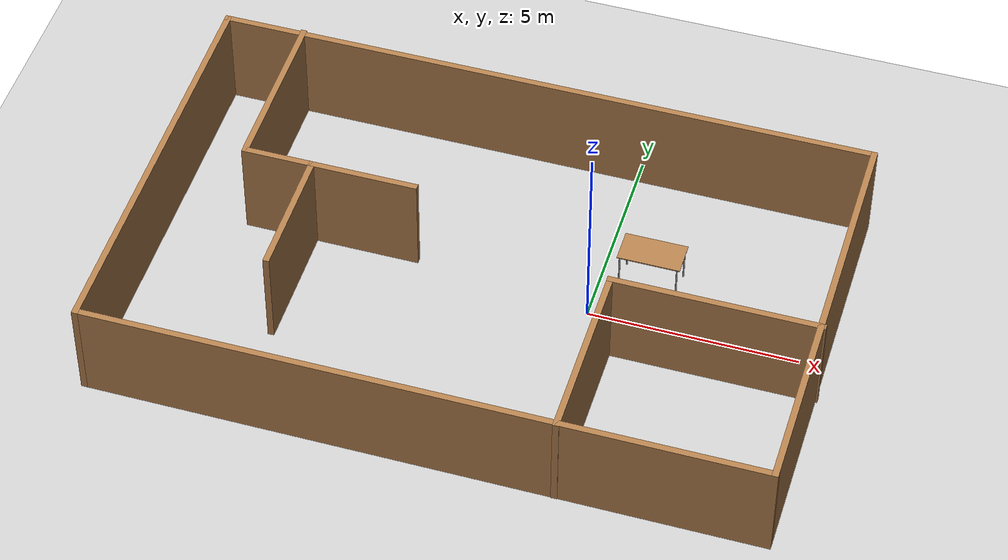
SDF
<sdf version="1.7">
 <world name="default">
  <light name="sun" type="directional">
   <pose>0 0 10 0 -0 0</pose>
   <diffuse>0.8 0.8 0.8 1</diffuse>
   <specular>0.2 0.2 0.2 1</specular>
   <attenuation>
    <range>1000</range>
    <constant>0.9</constant>
    <linear>0.01</linear>
    <quadratic>0.001</quadratic>
   </attenuation>
   <direction>-0.5 0.1 -0.9</direction>
   <spot><inner_angle>0</inner_angle><outer_angle>0</outer_angle><falloff>0</falloff></spot>
  </light>
  <model name="ground_plane">
   <static>1</static>
   <link name="link">
    <collision name="collision">
     <geometry><plane><normal>0 0 1</normal><size>100 100</size></plane></geometry>
     <surface>
      <contact><collide_bitmask>65535</collide_bitmask></contact>
      <friction><ode><mu>1.0</mu><mu2>1.0</mu2></ode></friction>
     </surface>
    </collision>
    <visual name="visual">
     <cast_shadows>0</cast_shadows>
     <geometry><plane><normal>0 0 1</normal><size>100 100</size></plane></geometry>
     <material>
      <script><uri>file://media/materials/scripts/gazebo.material</uri><name>Gazebo/Grey</name></script>
     </material>
    </visual>
   </link>
  </model>
  <gravity>0 0 -9.8</gravity>
  <magnetic_field>6e-06 2.3e-05 -4.2e-05</magnetic_field>
  <atmosphere type="adiabatic"/>
  <physics type="ode">
   <max_step_size>0.001</max_step_size>
   <real_time_factor>1</real_time_factor>
   <real_time_update_rate>1000</real_time_update_rate>
   <ode>
    <iters>100</iters>
    <sor>1.3</sor>
    <contact_max_correcting_vel>0.1</contact_max_correcting_vel>
    <contact_surface_layer>0.001</contact_surface_layer>
   </ode>
  </physics>
  <scene><ambient>0.4 0.4 0.4 1</ambient><background>0.7 0.7 0.7 1</background><shadows>1</shadows></scene>
  <audio><device>default</device></audio>
  <spherical_coordinates>
   <surface_model>EARTH_WGS84</surface_model>
   <latitude_deg>0</latitude_deg>
   <longitude_deg>0</longitude_deg>
   <elevation>0</elevation>
   <heading_deg>0</heading_deg>
  </spherical_coordinates>
  <model name="house">
   <pose>-2.34891 -0.394776 0 0 -0 0</pose>
   <link name="Wall_10">
    <collision name="Wall_10_Collision">
     <geometry><box><size>4.25 0.15 2.5</size></box></geometry>
     <pose>0 0 1.25 0 -0 0</pose>
     <surface>
      <contact><ode><kp>1e6</kp><kd>50</kd><min_depth>0.001</min_depth><max_vel>0.1</max_vel></ode></contact>
     </surface>
    </collision>
    <visual name="Wall_10_Visual">
     <pose>0 0 1.25 0 -0 0</pose>
     <geometry><box><size>4.25 0.15 2.5</size></box></geometry>
     <material>
      <script><uri>file://media/materials/scripts/gazebo.material</uri><name>Gazebo/Wood</name></script>
      <ambient>1 1 1 1</ambient>
     </material>
     <meta><layer>0</layer></meta>
    </visual>
    <pose>-3.99987 0.855617 0 0 -0 0</pose>
   </link>
   <link name="Wall_12">
    <collision name="Wall_12_Collision">
     <geometry><box><size>3.25 0.15 2.5</size></box></geometry>
     <pose>0 0 1.25 0 -0 0</pose>
    </collision>
    <visual name="Wall_12_Visual">
     <pose>0 0 1.25 0 -0 0</pose>
     <geometry><box><size>3.25 0.15 2.5</size></box></geometry>
     <material>
      <script><uri>file://media/materials/scripts/gazebo.material</uri><name>Gazebo/Wood</name></script>
      <ambient>1 1 1 1</ambient>
     </material>
     <meta><layer>0</layer></meta>
    </visual>
    <pose>-4.42858 -0.693473 0 0 -0 -1.5708</pose>
   </link>
   <link name="Wall_15">
    <collision name="Wall_15_Collision">
     <geometry><box><size>4.5 0.15 2.5</size></box></geometry>
     <pose>0 0 1.25 0 -0 0</pose>
    </collision>
    <visual name="Wall_15_Visual">
     <pose>0 0 1.25 0 -0 0</pose>
     <geometry><box><size>4.5 0.15 2.5</size></box></geometry>
     <material>
      <script><uri>file://media/materials/scripts/gazebo.material</uri><name>Gazebo/Wood</name></script>
      <ambient>1 1 1 1</ambient>
     </material>
     <meta><layer>0</layer></meta>
    </visual>
    <pose>3.09661 -2.78062 0 0 -0 1.5708</pose>
   </link>
   <link name="Wall_16">
    <collision name="Wall_16_Collision">
     <geometry><box><size>5 0.15 2.5</size></box></geometry>
     <pose>0 0 1.25 0 -0 0</pose>
    </collision>
    <visual name="Wall_16_Visual">
     <pose>0 0 1.25 0 -0 0</pose>
     <geometry><box><size>5 0.15 2.5</size></box></geometry>
     <material>
      <script><uri>file://media/materials/scripts/gazebo.material</uri><name>Gazebo/Wood</name></script>
      <ambient>1 1 1 1</ambient>
     </material>
     <meta><layer>0</layer></meta>
    </visual>
    <pose>5.52161 -0.605617 0 0 -0 0</pose>
   </link>
   <link name="Wall_4">
    <collision name="Wall_4_Collision">
     <geometry><box><size>16 0.15 2.5</size></box></geometry>
     <pose>0 0 1.25 0 -0 0</pose>
    </collision>
    <visual name="Wall_4_Visual">
     <pose>0 0 1.25 0 -0 0</pose>
     <geometry><box><size>16 0.15 2.5</size></box></geometry>
     <material>
      <script><uri>file://media/materials/scripts/gazebo.material</uri><name>Gazebo/Wood</name></script>
      <ambient>1 1 1 1</ambient>
     </material>
     <meta><layer>0</layer></meta>
    </visual>
    <pose>-0.021612 -4.94274 0 0 -0 3.14159</pose>
   </link>
   <link name="Wall_5">
    <collision name="Wall_5_Collision">
     <geometry><box><size>10 0.15 2.5</size></box></geometry>
     <pose>0 0 1.25 0 -0 0</pose>
    </collision>
    <visual name="Wall_5_Visual">
     <pose>0 0 1.25 0 -0 0</pose>
     <geometry><box><size>10 0.15 2.5</size></box></geometry>
     <material>
      <script><uri>file://media/materials/scripts/gazebo.material</uri><name>Gazebo/Wood</name></script>
      <ambient>1 1 1 1</ambient>
     </material>
     <meta><layer>0</layer></meta>
    </visual>
    <pose>-7.94661 -0.017737 0 0 -0 1.5708</pose>
   </link>
   <link name="Wall_6">
    <collision name="Wall_6_Collision">
     <geometry><box><size>16 0.15 2.5</size></box></geometry>
     <pose>0 0 1.25 0 -0 0</pose>
    </collision>
    <visual name="Wall_6_Visual">
     <pose>0 0 1.25 0 -0 0</pose>
     <geometry><box><size>16 0.15 2.5</size></box></geometry>
     <material>
      <script><uri>file://media/materials/scripts/gazebo.material</uri><name>Gazebo/Wood</name></script>
      <ambient>1 1 1 1</ambient>
     </material>
     <meta><layer>0</layer></meta>
    </visual>
    <pose>-0.021612 4.90726 0 0 -0 0</pose>
   </link>
   <link name="Wall_7">
    <collision name="Wall_7_Collision">
     <geometry><box><size>10 0.15 2.5</size></box></geometry>
     <pose>0 0 1.25 0 -0 0</pose>
    </collision>
    <visual name="Wall_7_Visual">
     <pose>0 0 1.25 0 -0 0</pose>
     <geometry><box><size>10 0.15 2.5</size></box></geometry>
     <material>
      <script><uri>file://media/materials/scripts/gazebo.material</uri><name>Gazebo/Wood</name></script>
      <ambient>1 1 1 1</ambient>
     </material>
     <meta><layer>0</layer></meta>
    </visual>
    <pose>7.90339 -0.017737 0 0 -0 -1.5708</pose>
   </link>
   <link name="Wall_9">
    <collision name="Wall_9_Collision">
     <geometry><box><size>4.25 0.15 2.5</size></box></geometry>
     <pose>0 0 1.25 0 -0 0</pose>
    </collision>
    <visual name="Wall_9_Visual">
     <pose>0 0 1.25 0 -0 0</pose>
     <geometry><box><size>4.25 0.15 2.5</size></box></geometry>
     <material>
      <script><uri>file://media/materials/scripts/gazebo.material</uri><name>Gazebo/Wood</name></script>
      <ambient>1 1 1 1</ambient>
     </material>
     <meta><layer>0</layer></meta>
    </visual>
    <pose>-6.04987 2.90562 0 0 -0 -1.5708</pose>
   </link>
   <static>1</static>
  </model>
  <model name="table">
   <static>1</static>
   <link name="link">
    <collision name="surface">
     <pose>0 0 1 0 -0 0</pose>
     <geometry><box><size>1.5 0.8 0.03</size></box></geometry>
     <surface><friction><ode><mu>0.6</mu><mu2>0.6</mu2></ode></friction></surface>
    </collision>
    <visual name="visual1">
     <pose>0 0 1 0 -0 0</pose>
     <geometry><box><size>1.5 0.8 0.03</size></box></geometry>
     <material>
      <script><uri>file://media/materials/scripts/gazebo.material</uri><name>Gazebo/Wood</name></script>
     </material>
    </visual>
    <collision name="front_left_leg">
     <pose>0.68 0.38 0.5 0 -0 0</pose>
     <geometry><cylinder><radius>0.02</radius><length>1</length></cylinder></geometry>
    </collision>
    <visual name="front_left_leg">
     <pose>0.68 0.38 0.5 0 -0 0</pose>
     <geometry><cylinder><radius>0.02</radius><length>1</length></cylinder></geometry>
     <material>
      <script><uri>file://media/materials/scripts/gazebo.material</uri><name>Gazebo/Grey</name></script>
     </material>
    </visual>
    <collision name="front_right_leg">
     <pose>0.68 -0.38 0.5 0 -0 0</pose>
     <geometry><cylinder><radius>0.02</radius><length>1</length></cylinder></geometry>
    </collision>
    <visual name="front_right_leg">
     <pose>0.68 -0.38 0.5 0 -0 0</pose>
     <geometry><cylinder><radius>0.02</radius><length>1</length></cylinder></geometry>
     <material>
      <script><uri>file://media/materials/scripts/gazebo.material</uri><name>Gazebo/Grey</name></script>
     </material>
    </visual>
    <collision name="back_right_leg">
     <pose>-0.68 -0.38 0.5 0 -0 0</pose>
     <geometry><cylinder><radius>0.02</radius><length>1</length></cylinder></geometry>
    </collision>
    <visual name="back_right_leg">
     <pose>-0.68 -0.38 0.5 0 -0 0</pose>
     <geometry><cylinder><radius>0.02</radius><length>1</length></cylinder></geometry>
     <material>
      <script><uri>file://media/materials/scripts/gazebo.material</uri><name>Gazebo/Grey</name></script>
     </material>
    </visual>
    <collision name="back_left_leg">
     <pose>-0.68 0.38 0.5 0 -0 0</pose>
     <geometry><cylinder><radius>0.02</radius><length>1</length></cylinder></geometry>
    </collision>
    <visual name="back_left_leg">
     <pose>-0.68 0.38 0.5 0 -0 0</pose>
     <geometry><cylinder><radius>0.02</radius><length>1</length></cylinder></geometry>
     <material>
      <script><uri>file://media/materials/scripts/gazebo.material</uri><name>Gazebo/Grey</name></script>
     </material>
    </visual>
   </link>
   <pose>1.14719 1.40312 0 0 -0 0</pose>
  </model>
 </world>
</sdf>
